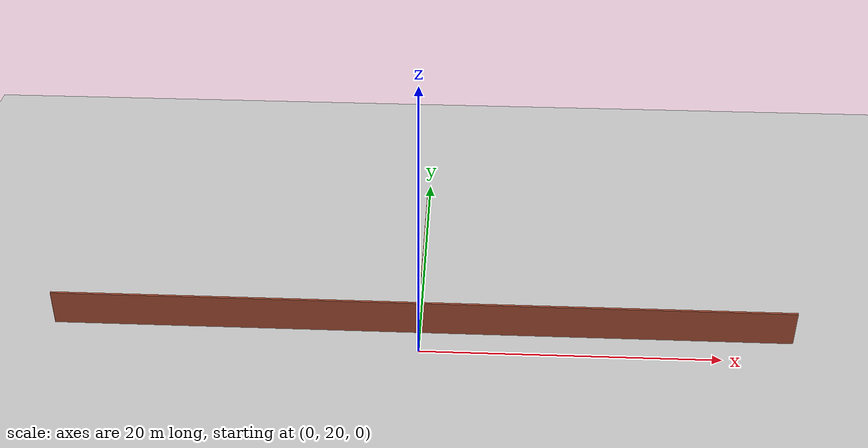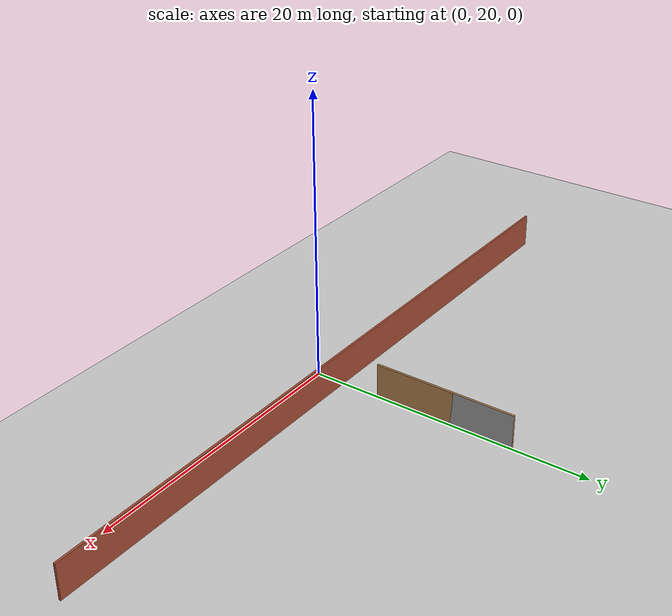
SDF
<sdf version="1.6">
 <world name="default">
  <model name="ground_plane">
   <static>1</static>
   <link name="link">
    <collision name="collision">
     <geometry><plane><normal>0 0 1</normal><size>100 100</size></plane></geometry>
     <surface><friction><ode><mu>100</mu><mu2>50</mu2></ode></friction></surface>
    </collision>
    <visual name="visual">
     <cast_shadows>0</cast_shadows>
     <geometry><plane><normal>0 0 1</normal><size>100 100</size></plane></geometry>
     <material>
      <script><uri>file://media/materials/scripts/gazebo.material</uri><name>Gazebo/Grey</name></script>
     </material>
    </visual>
   </link>
  </model>
  <model name="wall1">
   <pose>0 22 0 0 -0 0</pose>
   <link name="Wall_0">
    <collision name="Wall_0_Collision">
     <geometry><box><size>50 0.15 2.5</size></box></geometry>
     <pose>0 0 1.25 0 -0 0</pose>
    </collision>
    <visual name="Wall_0_Visual">
     <pose>0 0 1.25 0 -0 0</pose>
     <geometry><box><size>50 0.15 2.5</size></box></geometry>
     <material>
      <script><uri>file://media/materials/scripts/gazebo.material</uri><name>Gazebo/Bricks</name></script>
      <ambient>1 1 1 1</ambient>
     </material>
    </visual>
    <pose>1e-06 0 0 0 -0 3.14159</pose>
   </link>
   <static>1</static>
  </model>
  <model name="wall-10m-amodi">
   <pose>-0.002128 29.7924 0 0 -0 0</pose>
   <link name="Wall_24">
    <collision name="Wall_24_Collision">
     <geometry><box><size>10 0.15 2.5</size></box></geometry>
     <pose>0 0 1.25 0 -0 0</pose>
    </collision>
    <visual name="Wall_24_Visual">
     <pose>0 0 1.25 0 -0 0</pose>
     <geometry><box><size>10 0.15 2.5</size></box></geometry>
     <material>
      <script><uri>file://media/materials/scripts/gazebo.material</uri><name>Gazebo/Grey</name></script>
      <ambient>1 1 1 1</ambient>
     </material>
    </visual>
    <pose>0 -0 0 0 0 -1.5708</pose>
   </link>
   <link name="Wall_25">
    <collision name="Wall_25_Collision">
     <geometry><box><size>10 0.15 2.5</size></box></geometry>
     <pose>0 0 1.25 0 -0 0</pose>
    </collision>
    <visual name="Wall_25_Visual">
     <pose>0 0 1.25 0 -0 0</pose>
     <geometry><box><size>10 0.15 2.5</size></box></geometry>
     <material>
      <script><uri>file://media/materials/scripts/gazebo.material</uri><name>Gazebo/Wood</name></script>
      <ambient>1 1 1 1</ambient>
     </material>
    </visual>
    <pose>0 -0 0 0 -0 1.5708</pose>
   </link>
   <static>1</static>
  </model>
 </world>
</sdf>
